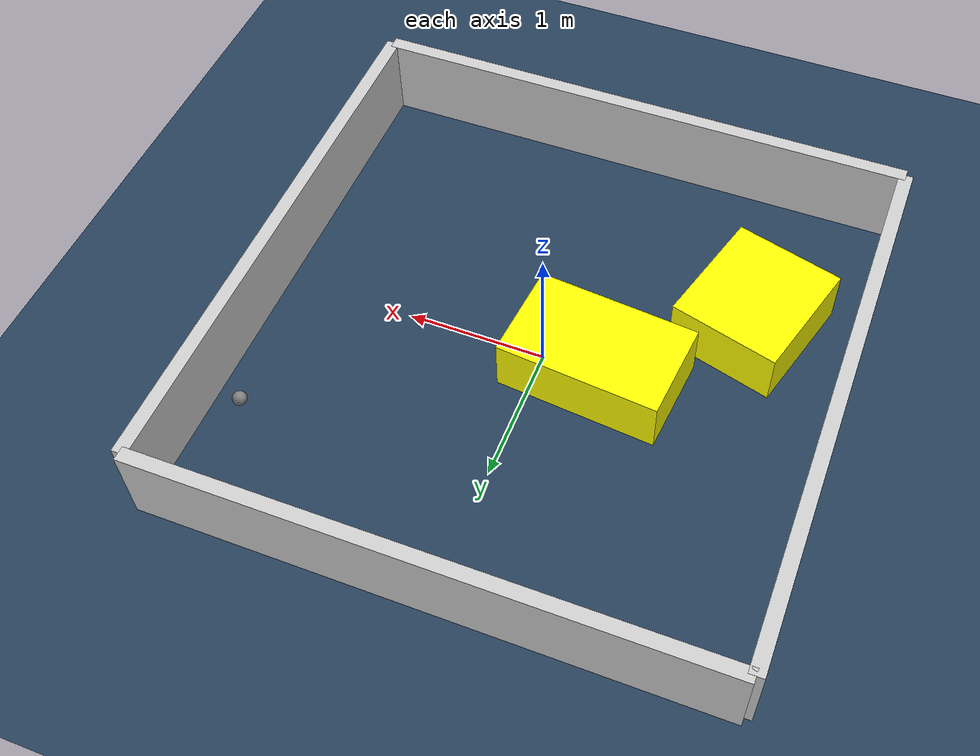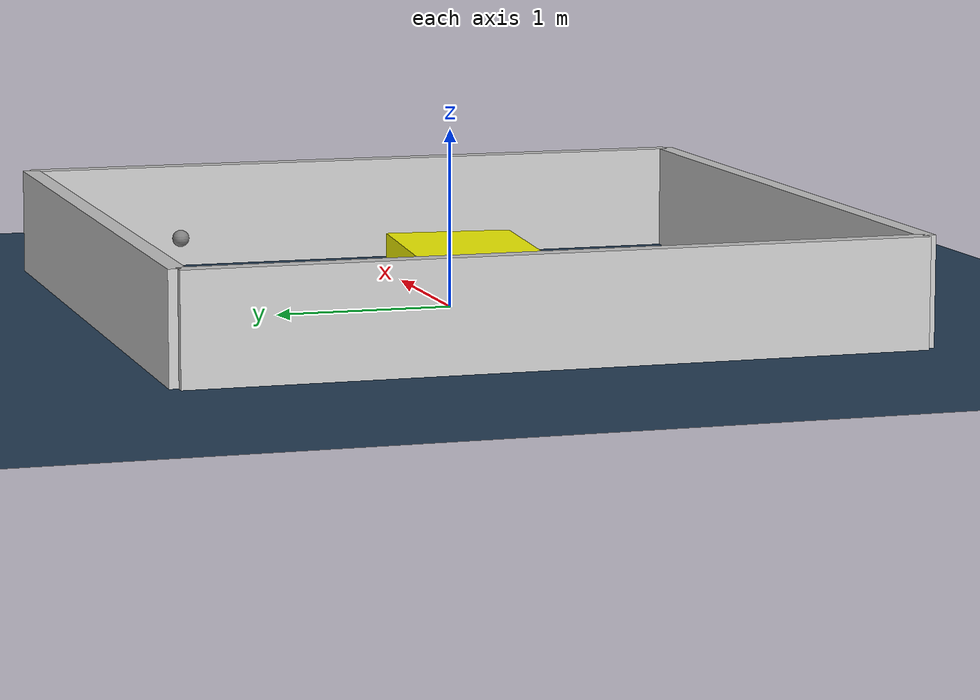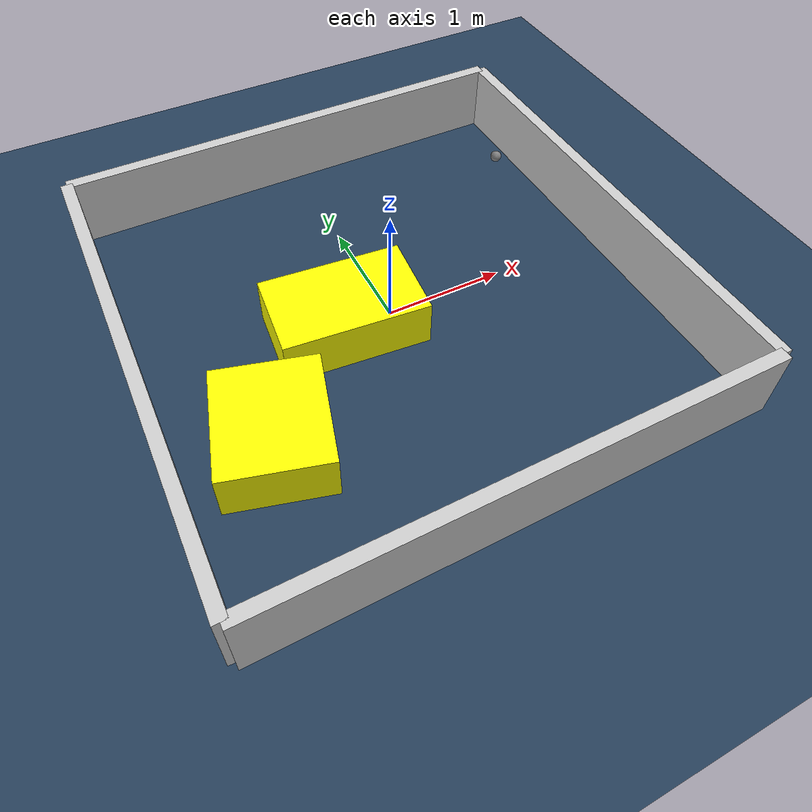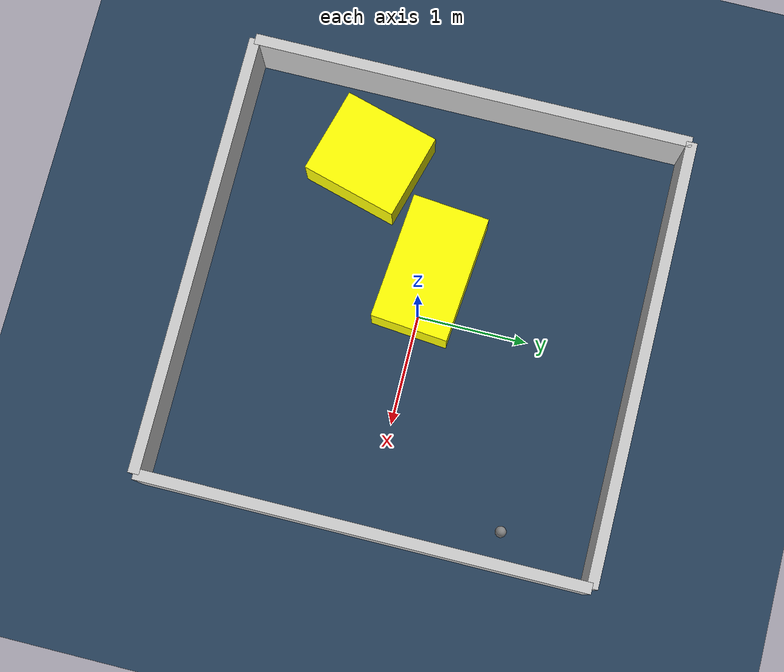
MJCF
<?xml version="1.0" ?>
<mujoco model="generated_environment">
  <option timestep="0.01" integrator="RK4" cone="elliptic"/>
  <default>
    <geom density="1"/>
  </default>
  <asset>
    <texture builtin="gradient" height="3072" rgb1="0.3 0.5 0.7" rgb2="0 0 0" type="skybox" width="512"/>
    <texture builtin="checker" height="300" mark="edge" markrgb="0.8 0.8 0.8" name="groundplane" rgb1="0.2 0.3 0.4" rgb2="0.1 0.2 0.3" type="2d" width="300"/>
    <material name="groundplane" reflectance="0.2" texrepeat="5 5" texture="groundplane" texuniform="true"/>
    <material name="robot" rgba="0.0 1.0 0.0 1"/>
  </asset>
  <worldbody>
    <light dir="0 0 -1" directional="true" pos="0 0 1.5"/>
    <geom condim="4" friction="1.0 0.005 0.001" material="groundplane" name="floor" size="0 0 0.05" type="plane"/>
    <body name="walls">
      <geom name="wall_1" condim="4" pos="-2.0 0.0 0.3" rgba="0.800000011920929 0.800000011920929 0.800000011920929 1.0" size="0.05 2.0 0.3" type="box"/>
      <geom name="wall_2" condim="4" pos="2.0 0.0 0.3" rgba="0.800000011920929 0.800000011920929 0.800000011920929 1.0" size="0.05 2.0 0.3" type="box"/>
      <geom name="wall_3" condim="4" pos="0.0 -2.0 0.3" rgba="0.800000011920929 0.800000011920929 0.800000011920929 1.0" size="2.0 0.05 0.3" type="box"/>
      <geom name="wall_4" condim="4" pos="0.0 2.0 0.3" rgba="0.800000011920929 0.800000011920929 0.800000011920929 1.0" size="2.0 0.05 0.3" type="box"/>
    </body>
    <body name="robot">
      <joint name="joint_x" type="slide" pos="0 0 0" axis="1 0 0"/>
      <joint name="joint_y" type="slide" pos="0 0 0" axis="0 1 0"/>
      <geom name="robot" type="sphere" pos="1.703381910120671 1.1623030165481363 0.2" size="0.05" mass="5." friction="1.0 0.005 0.0001" condim="4"/>
      <site name="sensor_ball"/>
    </body>
    <body name="obstacle_1_movable">
      <geom name="obstacle_1_movable" condim="4" pos="-0.3901223274868866 0.01227960133526862 0.2" euler="0 0 174.72383942620263" friction="1.0 0.005 0.001" rgba="1 1 0 1" size="0.5798875983192106 0.352575862483419 0.2" type="box" mass="0.1"/>
      <joint type="free"/>
    </body>
    <body name="obstacle_2_movable">
      <geom name="obstacle_2_movable" condim="4" pos="-1.2748234858694456 -0.7576548939929325 0.2" euler="0 0 164.47405964552865" friction="1.0 0.005 0.001" rgba="1 1 0 1" size="0.39931215561835465 0.44641529970299143 0.2" type="box" mass="0.1"/>
      <joint type="free"/>
    </body>
  </worldbody>
  <actuator>
    <motor name="actuator_x" joint="joint_x" gear="1" ctrlrange="-1 1"/>
    <motor name="actuator_y" joint="joint_y" gear="1" ctrlrange="-1 1"/>
  </actuator>
</mujoco>
